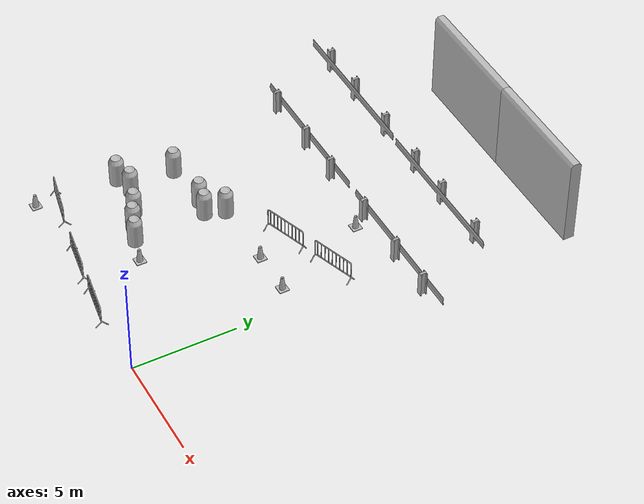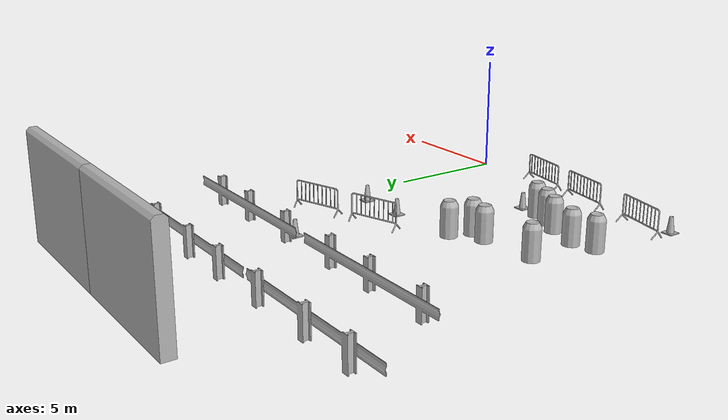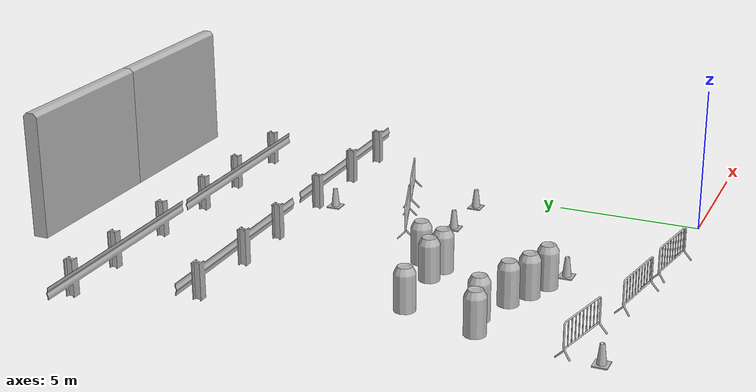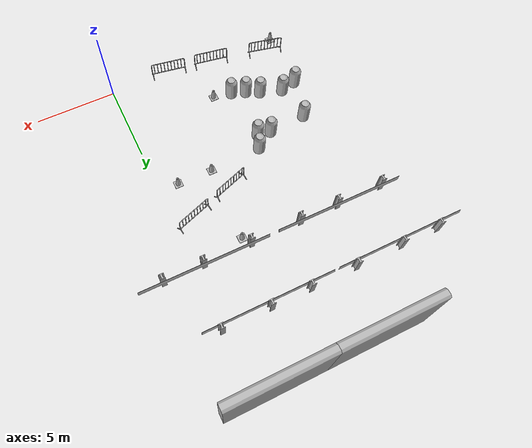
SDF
<sdf version="1.6">
 <world name="default">
  <model name="aws_robomaker_racetrack_CrashworthBucket_01_00">
   <link name="aws_CrashworthBucket_01::body">
    <inertial>
     <mass>5</mass>
     <inertia><ixx>1</ixx><ixy>0</ixy><ixz>0</ixz><iyy>1</iyy><iyz>0</iyz><izz>1</izz></inertia>
    </inertial>
    <visual name="visual">
     <geometry>
      <mesh>
       <uri>file://models/aws_robomaker_racetrack_CrashworthBucket_01/meshes/aws_CrashworthBucket_01_visual.DAE</uri>
      </mesh>
     </geometry>
     <material><shader type="pixel"><normal_map>__default__</normal_map></shader></material>
     <meta><layer>0</layer></meta>
    </visual>
    <collision name="collision_0">
     <geometry>
      <mesh>
       <uri>file://models/aws_robomaker_racetrack_CrashworthBucket_01/meshes/aws_CrashworthBucket_01_collision.DAE</uri>
       <scale>1 1 1</scale>
      </mesh>
     </geometry>
     <surface>
      <friction>
       <ode><mu>1</mu><mu2>1</mu2><fdir1>0 0 0</fdir1><slip1>0</slip1><slip2>0</slip2></ode>
       <torsional>
        <coefficient>1</coefficient>
        <patch_radius>0</patch_radius>
        <surface_radius>0</surface_radius>
        <use_patch_radius>1</use_patch_radius>
        <ode><slip>0</slip></ode>
       </torsional>
      </friction>
      <bounce><restitution_coefficient>0</restitution_coefficient><threshold>1e+06</threshold></bounce>
      <contact>
       <collide_without_contact>0</collide_without_contact>
       <collide_without_contact_bitmask>1</collide_without_contact_bitmask>
       <collide_bitmask>1</collide_bitmask>
       <ode>
        <soft_cfm>0</soft_cfm>
        <soft_erp>0.2</soft_erp>
        <kp>1e+13</kp>
        <kd>1</kd>
        <max_vel>0.01</max_vel>
        <min_depth>0</min_depth>
       </ode>
       <bullet>
        <split_impulse>1</split_impulse>
        <split_impulse_penetration_threshold>-0.01</split_impulse_penetration_threshold>
        <soft_cfm>0</soft_cfm>
        <soft_erp>0.2</soft_erp>
        <kp>1e+13</kp>
        <kd>1</kd>
       </bullet>
      </contact>
     </surface>
    </collision>
   </link>
   <static>1</static>
   <pose>-8.47522 4.09403 0.054 0 -0 0</pose>
  </model>
  <model name="aws_robomaker_racetrack_CrashworthBucket_01_01">
   <link name="aws_CrashworthBucket_01::body">
    <inertial>
     <mass>5</mass>
     <inertia><ixx>1</ixx><ixy>0</ixy><ixz>0</ixz><iyy>1</iyy><iyz>0</iyz><izz>1</izz></inertia>
    </inertial>
    <visual name="visual">
     <geometry>
      <mesh>
       <uri>file://models/aws_robomaker_racetrack_CrashworthBucket_01/meshes/aws_CrashworthBucket_01_visual.DAE</uri>
      </mesh>
     </geometry>
     <material><shader type="pixel"><normal_map>__default__</normal_map></shader></material>
     <meta><layer>0</layer></meta>
    </visual>
    <collision name="collision_0">
     <geometry>
      <mesh>
       <uri>file://models/aws_robomaker_racetrack_CrashworthBucket_01/meshes/aws_CrashworthBucket_01_collision.DAE</uri>
       <scale>1 1 1</scale>
      </mesh>
     </geometry>
     <surface>
      <friction>
       <ode><mu>1</mu><mu2>1</mu2><fdir1>0 0 0</fdir1><slip1>0</slip1><slip2>0</slip2></ode>
       <torsional>
        <coefficient>1</coefficient>
        <patch_radius>0</patch_radius>
        <surface_radius>0</surface_radius>
        <use_patch_radius>1</use_patch_radius>
        <ode><slip>0</slip></ode>
       </torsional>
      </friction>
      <bounce><restitution_coefficient>0</restitution_coefficient><threshold>1e+06</threshold></bounce>
      <contact>
       <collide_without_contact>0</collide_without_contact>
       <collide_without_contact_bitmask>1</collide_without_contact_bitmask>
       <collide_bitmask>1</collide_bitmask>
       <ode>
        <soft_cfm>0</soft_cfm>
        <soft_erp>0.2</soft_erp>
        <kp>1e+13</kp>
        <kd>1</kd>
        <max_vel>0.01</max_vel>
        <min_depth>0</min_depth>
       </ode>
       <bullet>
        <split_impulse>1</split_impulse>
        <split_impulse_penetration_threshold>-0.01</split_impulse_penetration_threshold>
        <soft_cfm>0</soft_cfm>
        <soft_erp>0.2</soft_erp>
        <kp>1e+13</kp>
        <kd>1</kd>
       </bullet>
      </contact>
     </surface>
    </collision>
   </link>
   <static>1</static>
   <pose>-7.67012 3.67698 0.054 0 -0 0</pose>
  </model>
  <model name="aws_robomaker_racetrack_CrashworthBucket_01_50">
   <link name="aws_CrashworthBucket_01::body">
    <inertial>
     <mass>5</mass>
     <inertia><ixx>1</ixx><ixy>0</ixy><ixz>0</ixz><iyy>1</iyy><iyz>0</iyz><izz>1</izz></inertia>
    </inertial>
    <visual name="visual">
     <geometry>
      <mesh>
       <uri>file://models/aws_robomaker_racetrack_CrashworthBucket_01/meshes/aws_CrashworthBucket_01_visual.DAE</uri>
      </mesh>
     </geometry>
     <material><shader type="pixel"><normal_map>__default__</normal_map></shader></material>
     <meta><layer>0</layer></meta>
    </visual>
    <collision name="collision_0">
     <geometry>
      <mesh>
       <uri>file://models/aws_robomaker_racetrack_CrashworthBucket_01/meshes/aws_CrashworthBucket_01_collision.DAE</uri>
       <scale>1 1 1</scale>
      </mesh>
     </geometry>
     <surface>
      <friction>
       <ode><mu>1</mu><mu2>1</mu2><fdir1>0 0 0</fdir1><slip1>0</slip1><slip2>0</slip2></ode>
       <torsional>
        <coefficient>1</coefficient>
        <patch_radius>0</patch_radius>
        <surface_radius>0</surface_radius>
        <use_patch_radius>1</use_patch_radius>
        <ode><slip>0</slip></ode>
       </torsional>
      </friction>
      <bounce><restitution_coefficient>0</restitution_coefficient><threshold>1e+06</threshold></bounce>
      <contact>
       <collide_without_contact>0</collide_without_contact>
       <collide_without_contact_bitmask>1</collide_without_contact_bitmask>
       <collide_bitmask>1</collide_bitmask>
       <ode>
        <soft_cfm>0</soft_cfm>
        <soft_erp>0.2</soft_erp>
        <kp>1e+13</kp>
        <kd>1</kd>
        <max_vel>0.01</max_vel>
        <min_depth>0</min_depth>
       </ode>
       <bullet>
        <split_impulse>1</split_impulse>
        <split_impulse_penetration_threshold>-0.01</split_impulse_penetration_threshold>
        <soft_cfm>0</soft_cfm>
        <soft_erp>0.2</soft_erp>
        <kp>1e+13</kp>
        <kd>1</kd>
       </bullet>
      </contact>
     </surface>
    </collision>
   </link>
   <static>1</static>
   <pose>-6.80733 3.36416 0.054 0 -0 0</pose>
  </model>
  <model name="aws_robomaker_racetrack_CrashworthBucket_01_51">
   <link name="aws_CrashworthBucket_01::body">
    <inertial>
     <mass>5</mass>
     <inertia><ixx>1</ixx><ixy>0</ixy><ixz>0</ixz><iyy>1</iyy><iyz>0</iyz><izz>1</izz></inertia>
    </inertial>
    <visual name="visual">
     <geometry>
      <mesh>
       <uri>file://models/aws_robomaker_racetrack_CrashworthBucket_01/meshes/aws_CrashworthBucket_01_visual.DAE</uri>
      </mesh>
     </geometry>
     <material><shader type="pixel"><normal_map>__default__</normal_map></shader></material>
     <meta><layer>0</layer></meta>
    </visual>
    <collision name="collision_0">
     <geometry>
      <mesh>
       <uri>file://models/aws_robomaker_racetrack_CrashworthBucket_01/meshes/aws_CrashworthBucket_01_collision.DAE</uri>
       <scale>1 1 1</scale>
      </mesh>
     </geometry>
     <surface>
      <friction>
       <ode><mu>1</mu><mu2>1</mu2><fdir1>0 0 0</fdir1><slip1>0</slip1><slip2>0</slip2></ode>
       <torsional>
        <coefficient>1</coefficient>
        <patch_radius>0</patch_radius>
        <surface_radius>0</surface_radius>
        <use_patch_radius>1</use_patch_radius>
        <ode><slip>0</slip></ode>
       </torsional>
      </friction>
      <bounce><restitution_coefficient>0</restitution_coefficient><threshold>1e+06</threshold></bounce>
      <contact>
       <collide_without_contact>0</collide_without_contact>
       <collide_without_contact_bitmask>1</collide_without_contact_bitmask>
       <collide_bitmask>1</collide_bitmask>
       <ode>
        <soft_cfm>0</soft_cfm>
        <soft_erp>0.2</soft_erp>
        <kp>1e+13</kp>
        <kd>1</kd>
        <max_vel>0.01</max_vel>
        <min_depth>0</min_depth>
       </ode>
       <bullet>
        <split_impulse>1</split_impulse>
        <split_impulse_penetration_threshold>-0.01</split_impulse_penetration_threshold>
        <soft_cfm>0</soft_cfm>
        <soft_erp>0.2</soft_erp>
        <kp>1e+13</kp>
        <kd>1</kd>
       </bullet>
      </contact>
     </surface>
    </collision>
   </link>
   <static>1</static>
   <pose>-9.83411 4.55632 0.054 0 -0 0</pose>
  </model>
  <model name="aws_robomaker_racetrack_CrashworthBucket_01_52">
   <link name="aws_CrashworthBucket_01::body">
    <inertial>
     <mass>5</mass>
     <inertia><ixx>1</ixx><ixy>0</ixy><ixz>0</ixz><iyy>1</iyy><iyz>0</iyz><izz>1</izz></inertia>
    </inertial>
    <visual name="visual">
     <geometry>
      <mesh>
       <uri>file://models/aws_robomaker_racetrack_CrashworthBucket_01/meshes/aws_CrashworthBucket_01_visual.DAE</uri>
      </mesh>
     </geometry>
     <material><shader type="pixel"><normal_map>__default__</normal_map></shader></material>
     <meta><layer>0</layer></meta>
    </visual>
    <collision name="collision_0">
     <geometry>
      <mesh>
       <uri>file://models/aws_robomaker_racetrack_CrashworthBucket_01/meshes/aws_CrashworthBucket_01_collision.DAE</uri>
       <scale>1 1 1</scale>
      </mesh>
     </geometry>
     <surface>
      <friction>
       <ode><mu>1</mu><mu2>1</mu2><fdir1>0 0 0</fdir1><slip1>0</slip1><slip2>0</slip2></ode>
       <torsional>
        <coefficient>1</coefficient>
        <patch_radius>0</patch_radius>
        <surface_radius>0</surface_radius>
        <use_patch_radius>1</use_patch_radius>
        <ode><slip>0</slip></ode>
       </torsional>
      </friction>
      <bounce><restitution_coefficient>0</restitution_coefficient><threshold>1e+06</threshold></bounce>
      <contact>
       <collide_without_contact>0</collide_without_contact>
       <collide_without_contact_bitmask>1</collide_without_contact_bitmask>
       <collide_bitmask>1</collide_bitmask>
       <ode>
        <soft_cfm>0</soft_cfm>
        <soft_erp>0.2</soft_erp>
        <kp>1e+13</kp>
        <kd>1</kd>
        <max_vel>0.01</max_vel>
        <min_depth>0</min_depth>
       </ode>
       <bullet>
        <split_impulse>1</split_impulse>
        <split_impulse_penetration_threshold>-0.01</split_impulse_penetration_threshold>
        <soft_cfm>0</soft_cfm>
        <soft_erp>0.2</soft_erp>
        <kp>1e+13</kp>
        <kd>1</kd>
       </bullet>
      </contact>
     </surface>
    </collision>
   </link>
   <static>1</static>
   <pose>-10.8194 4.31922 0.054 0 -0 0</pose>
  </model>
  <model name="aws_robomaker_racetrack_CrashworthBucket_01_54">
   <link name="aws_CrashworthBucket_01::body">
    <inertial>
     <mass>5</mass>
     <inertia><ixx>1</ixx><ixy>0</ixy><ixz>0</ixz><iyy>1</iyy><iyz>0</iyz><izz>1</izz></inertia>
    </inertial>
    <visual name="visual">
     <geometry>
      <mesh>
       <uri>file://models/aws_robomaker_racetrack_CrashworthBucket_01/meshes/aws_CrashworthBucket_01_visual.DAE</uri>
      </mesh>
     </geometry>
     <material><shader type="pixel"><normal_map>__default__</normal_map></shader></material>
     <meta><layer>0</layer></meta>
    </visual>
    <collision name="collision_0">
     <geometry>
      <mesh>
       <uri>file://models/aws_robomaker_racetrack_CrashworthBucket_01/meshes/aws_CrashworthBucket_01_collision.DAE</uri>
       <scale>1 1 1</scale>
      </mesh>
     </geometry>
     <surface>
      <friction>
       <ode><mu>1</mu><mu2>1</mu2><fdir1>0 0 0</fdir1><slip1>0</slip1><slip2>0</slip2></ode>
       <torsional>
        <coefficient>1</coefficient>
        <patch_radius>0</patch_radius>
        <surface_radius>0</surface_radius>
        <use_patch_radius>1</use_patch_radius>
        <ode><slip>0</slip></ode>
       </torsional>
      </friction>
      <bounce><restitution_coefficient>0</restitution_coefficient><threshold>1e+06</threshold></bounce>
      <contact>
       <collide_without_contact>0</collide_without_contact>
       <collide_without_contact_bitmask>1</collide_without_contact_bitmask>
       <collide_bitmask>1</collide_bitmask>
       <ode>
        <soft_cfm>0</soft_cfm>
        <soft_erp>0.2</soft_erp>
        <kp>1e+13</kp>
        <kd>1</kd>
        <max_vel>0.01</max_vel>
        <min_depth>0</min_depth>
       </ode>
       <bullet>
        <split_impulse>1</split_impulse>
        <split_impulse_penetration_threshold>-0.01</split_impulse_penetration_threshold>
        <soft_cfm>0</soft_cfm>
        <soft_erp>0.2</soft_erp>
        <kp>1e+13</kp>
        <kd>1</kd>
       </bullet>
      </contact>
     </surface>
    </collision>
   </link>
   <static>1</static>
   <pose>-10.1026 6.87186 0.054 0 -0 0</pose>
  </model>
  <model name="aws_robomaker_racetrack_CrashworthBucket_01_57">
   <link name="aws_CrashworthBucket_01::body">
    <inertial>
     <mass>5</mass>
     <inertia><ixx>1</ixx><ixy>0</ixy><ixz>0</ixz><iyy>1</iyy><iyz>0</iyz><izz>1</izz></inertia>
    </inertial>
    <visual name="visual">
     <geometry>
      <mesh>
       <uri>file://models/aws_robomaker_racetrack_CrashworthBucket_01/meshes/aws_CrashworthBucket_01_visual.DAE</uri>
      </mesh>
     </geometry>
     <material><shader type="pixel"><normal_map>__default__</normal_map></shader></material>
     <meta><layer>0</layer></meta>
    </visual>
    <collision name="collision_0">
     <geometry>
      <mesh>
       <uri>file://models/aws_robomaker_racetrack_CrashworthBucket_01/meshes/aws_CrashworthBucket_01_collision.DAE</uri>
       <scale>1 1 1</scale>
      </mesh>
     </geometry>
     <surface>
      <friction>
       <ode><mu>1</mu><mu2>1</mu2><fdir1>0 0 0</fdir1><slip1>0</slip1><slip2>0</slip2></ode>
       <torsional>
        <coefficient>1</coefficient>
        <patch_radius>0</patch_radius>
        <surface_radius>0</surface_radius>
        <use_patch_radius>1</use_patch_radius>
        <ode><slip>0</slip></ode>
       </torsional>
      </friction>
      <bounce><restitution_coefficient>0</restitution_coefficient><threshold>1e+06</threshold></bounce>
      <contact>
       <collide_without_contact>0</collide_without_contact>
       <collide_without_contact_bitmask>1</collide_without_contact_bitmask>
       <collide_bitmask>1</collide_bitmask>
       <ode>
        <soft_cfm>0</soft_cfm>
        <soft_erp>0.2</soft_erp>
        <kp>1e+13</kp>
        <kd>1</kd>
        <max_vel>0.01</max_vel>
        <min_depth>0</min_depth>
       </ode>
       <bullet>
        <split_impulse>1</split_impulse>
        <split_impulse_penetration_threshold>-0.01</split_impulse_penetration_threshold>
        <soft_cfm>0</soft_cfm>
        <soft_erp>0.2</soft_erp>
        <kp>1e+13</kp>
        <kd>1</kd>
       </bullet>
      </contact>
     </surface>
    </collision>
   </link>
   <static>1</static>
   <pose>-7.72969 7.02543 0.054 0 -0 0</pose>
  </model>
  <model name="aws_robomaker_racetrack_CrashworthBucket_01_58">
   <link name="aws_CrashworthBucket_01::body">
    <inertial>
     <mass>5</mass>
     <inertia><ixx>1</ixx><ixy>0</ixy><ixz>0</ixz><iyy>1</iyy><iyz>0</iyz><izz>1</izz></inertia>
    </inertial>
    <visual name="visual">
     <geometry>
      <mesh>
       <uri>file://models/aws_robomaker_racetrack_CrashworthBucket_01/meshes/aws_CrashworthBucket_01_visual.DAE</uri>
      </mesh>
     </geometry>
     <material><shader type="pixel"><normal_map>__default__</normal_map></shader></material>
     <meta><layer>0</layer></meta>
    </visual>
    <collision name="collision_0">
     <geometry>
      <mesh>
       <uri>file://models/aws_robomaker_racetrack_CrashworthBucket_01/meshes/aws_CrashworthBucket_01_collision.DAE</uri>
       <scale>1 1 1</scale>
      </mesh>
     </geometry>
     <surface>
      <friction>
       <ode><mu>1</mu><mu2>1</mu2><fdir1>0 0 0</fdir1><slip1>0</slip1><slip2>0</slip2></ode>
       <torsional>
        <coefficient>1</coefficient>
        <patch_radius>0</patch_radius>
        <surface_radius>0</surface_radius>
        <use_patch_radius>1</use_patch_radius>
        <ode><slip>0</slip></ode>
       </torsional>
      </friction>
      <bounce><restitution_coefficient>0</restitution_coefficient><threshold>1e+06</threshold></bounce>
      <contact>
       <collide_without_contact>0</collide_without_contact>
       <collide_without_contact_bitmask>1</collide_without_contact_bitmask>
       <collide_bitmask>1</collide_bitmask>
       <ode>
        <soft_cfm>0</soft_cfm>
        <soft_erp>0.2</soft_erp>
        <kp>1e+13</kp>
        <kd>1</kd>
        <max_vel>0.01</max_vel>
        <min_depth>0</min_depth>
       </ode>
       <bullet>
        <split_impulse>1</split_impulse>
        <split_impulse_penetration_threshold>-0.01</split_impulse_penetration_threshold>
        <soft_cfm>0</soft_cfm>
        <soft_erp>0.2</soft_erp>
        <kp>1e+13</kp>
        <kd>1</kd>
       </bullet>
      </contact>
     </surface>
    </collision>
   </link>
   <static>1</static>
   <pose>-6.91293 6.87432 0.054 0 -0 0</pose>
  </model>
  <model name="aws_robomaker_racetrack_CrashworthBucket_01_59">
   <link name="aws_CrashworthBucket_01::body">
    <inertial>
     <mass>5</mass>
     <inertia><ixx>1</ixx><ixy>0</ixy><ixz>0</ixz><iyy>1</iyy><iyz>0</iyz><izz>1</izz></inertia>
    </inertial>
    <visual name="visual">
     <geometry>
      <mesh>
       <uri>file://models/aws_robomaker_racetrack_CrashworthBucket_01/meshes/aws_CrashworthBucket_01_visual.DAE</uri>
      </mesh>
     </geometry>
     <material><shader type="pixel"><normal_map>__default__</normal_map></shader></material>
     <meta><layer>0</layer></meta>
    </visual>
    <collision name="collision_0">
     <geometry>
      <mesh>
       <uri>file://models/aws_robomaker_racetrack_CrashworthBucket_01/meshes/aws_CrashworthBucket_01_collision.DAE</uri>
       <scale>1 1 1</scale>
      </mesh>
     </geometry>
     <surface>
      <friction>
       <ode><mu>1</mu><mu2>1</mu2><fdir1>0 0 0</fdir1><slip1>0</slip1><slip2>0</slip2></ode>
       <torsional>
        <coefficient>1</coefficient>
        <patch_radius>0</patch_radius>
        <surface_radius>0</surface_radius>
        <use_patch_radius>1</use_patch_radius>
        <ode><slip>0</slip></ode>
       </torsional>
      </friction>
      <bounce><restitution_coefficient>0</restitution_coefficient><threshold>1e+06</threshold></bounce>
      <contact>
       <collide_without_contact>0</collide_without_contact>
       <collide_without_contact_bitmask>1</collide_without_contact_bitmask>
       <collide_bitmask>1</collide_bitmask>
       <ode>
        <soft_cfm>0</soft_cfm>
        <soft_erp>0.2</soft_erp>
        <kp>1e+13</kp>
        <kd>1</kd>
        <max_vel>0.01</max_vel>
        <min_depth>0</min_depth>
       </ode>
       <bullet>
        <split_impulse>1</split_impulse>
        <split_impulse_penetration_threshold>-0.01</split_impulse_penetration_threshold>
        <soft_cfm>0</soft_cfm>
        <soft_erp>0.2</soft_erp>
        <kp>1e+13</kp>
        <kd>1</kd>
       </bullet>
      </contact>
     </surface>
    </collision>
   </link>
   <static>1</static>
   <pose>-6.56208 7.77782 0.054 0 -0 0</pose>
  </model>
  <model name="aws_robomaker_racetrack_Fence_01_01">
   <link name="aws_Fence_01::body">
    <inertial>
     <mass>5</mass>
     <inertia><ixx>1</ixx><ixy>0</ixy><ixz>0</ixz><iyy>1</iyy><iyz>0</iyz><izz>1</izz></inertia>
    </inertial>
    <visual name="visual">
     <geometry>
      <mesh><uri>file://models/aws_robomaker_racetrack_Fence_01/meshes/aws_Fence_01_visual.DAE</uri></mesh>
     </geometry>
     <material><shader type="pixel"><normal_map>__default__</normal_map></shader></material>
     <meta><layer>0</layer></meta>
    </visual>
    <collision name="collision_0">
     <geometry>
      <mesh>
       <uri>file://models/aws_robomaker_racetrack_Fence_01/meshes/aws_Fence_01_collision.DAE</uri>
       <scale>1 1 1</scale>
      </mesh>
     </geometry>
     <surface>
      <friction>
       <ode><mu>1</mu><mu2>1</mu2><fdir1>0 0 0</fdir1><slip1>0</slip1><slip2>0</slip2></ode>
       <torsional>
        <coefficient>1</coefficient>
        <patch_radius>0</patch_radius>
        <surface_radius>0</surface_radius>
        <use_patch_radius>1</use_patch_radius>
        <ode><slip>0</slip></ode>
       </torsional>
      </friction>
      <bounce><restitution_coefficient>0</restitution_coefficient><threshold>1e+06</threshold></bounce>
      <contact>
       <collide_without_contact>0</collide_without_contact>
       <collide_without_contact_bitmask>1</collide_without_contact_bitmask>
       <collide_bitmask>1</collide_bitmask>
       <ode>
        <soft_cfm>0</soft_cfm>
        <soft_erp>0.2</soft_erp>
        <kp>1e+13</kp>
        <kd>1</kd>
        <max_vel>0.01</max_vel>
        <min_depth>0</min_depth>
       </ode>
       <bullet>
        <split_impulse>1</split_impulse>
        <split_impulse_penetration_threshold>-0.01</split_impulse_penetration_threshold>
        <soft_cfm>0</soft_cfm>
        <soft_erp>0.2</soft_erp>
        <kp>1e+13</kp>
        <kd>1</kd>
       </bullet>
      </contact>
     </surface>
    </collision>
   </link>
   <static>1</static>
   <pose>-0.500271 13.1587 0 0 0 -1.57272</pose>
  </model>
  <model name="aws_robomaker_racetrack_Fence_01_02">
   <link name="aws_Fence_01::body">
    <inertial>
     <mass>5</mass>
     <inertia><ixx>1</ixx><ixy>0</ixy><ixz>0</ixz><iyy>1</iyy><iyz>0</iyz><izz>1</izz></inertia>
    </inertial>
    <visual name="visual">
     <geometry>
      <mesh><uri>file://models/aws_robomaker_racetrack_Fence_01/meshes/aws_Fence_01_visual.DAE</uri></mesh>
     </geometry>
     <material><shader type="pixel"><normal_map>__default__</normal_map></shader></material>
     <meta><layer>0</layer></meta>
    </visual>
    <collision name="collision_0">
     <geometry>
      <mesh>
       <uri>file://models/aws_robomaker_racetrack_Fence_01/meshes/aws_Fence_01_collision.DAE</uri>
       <scale>1 1 1</scale>
      </mesh>
     </geometry>
     <surface>
      <friction>
       <ode><mu>1</mu><mu2>1</mu2><fdir1>0 0 0</fdir1><slip1>0</slip1><slip2>0</slip2></ode>
       <torsional>
        <coefficient>1</coefficient>
        <patch_radius>0</patch_radius>
        <surface_radius>0</surface_radius>
        <use_patch_radius>1</use_patch_radius>
        <ode><slip>0</slip></ode>
       </torsional>
      </friction>
      <bounce><restitution_coefficient>0</restitution_coefficient><threshold>1e+06</threshold></bounce>
      <contact>
       <collide_without_contact>0</collide_without_contact>
       <collide_without_contact_bitmask>1</collide_without_contact_bitmask>
       <collide_bitmask>1</collide_bitmask>
       <ode>
        <soft_cfm>0</soft_cfm>
        <soft_erp>0.2</soft_erp>
        <kp>1e+13</kp>
        <kd>1</kd>
        <max_vel>0.01</max_vel>
        <min_depth>0</min_depth>
       </ode>
       <bullet>
        <split_impulse>1</split_impulse>
        <split_impulse_penetration_threshold>-0.01</split_impulse_penetration_threshold>
        <soft_cfm>0</soft_cfm>
        <soft_erp>0.2</soft_erp>
        <kp>1e+13</kp>
        <kd>1</kd>
       </bullet>
      </contact>
     </surface>
    </collision>
   </link>
   <static>1</static>
   <pose>-8.89723 13.1587 0 0 0 -1.57272</pose>
  </model>
  <model name="aws_robomaker_racetrack_Fence_01_13">
   <link name="aws_Fence_01::body">
    <inertial>
     <mass>5</mass>
     <inertia><ixx>1</ixx><ixy>0</ixy><ixz>0</ixz><iyy>1</iyy><iyz>0</iyz><izz>1</izz></inertia>
    </inertial>
    <visual name="visual">
     <geometry>
      <mesh><uri>file://models/aws_robomaker_racetrack_Fence_01/meshes/aws_Fence_01_visual.DAE</uri></mesh>
     </geometry>
     <material><shader type="pixel"><normal_map>__default__</normal_map></shader></material>
     <meta><layer>0</layer></meta>
    </visual>
    <collision name="collision_0">
     <geometry>
      <mesh>
       <uri>file://models/aws_robomaker_racetrack_Fence_01/meshes/aws_Fence_01_collision.DAE</uri>
       <scale>1 1 1</scale>
      </mesh>
     </geometry>
     <surface>
      <friction>
       <ode><mu>1</mu><mu2>1</mu2><fdir1>0 0 0</fdir1><slip1>0</slip1><slip2>0</slip2></ode>
       <torsional>
        <coefficient>1</coefficient>
        <patch_radius>0</patch_radius>
        <surface_radius>0</surface_radius>
        <use_patch_radius>1</use_patch_radius>
        <ode><slip>0</slip></ode>
       </torsional>
      </friction>
      <bounce><restitution_coefficient>0</restitution_coefficient><threshold>1e+06</threshold></bounce>
      <contact>
       <collide_without_contact>0</collide_without_contact>
       <collide_without_contact_bitmask>1</collide_without_contact_bitmask>
       <collide_bitmask>1</collide_bitmask>
       <ode>
        <soft_cfm>0</soft_cfm>
        <soft_erp>0.2</soft_erp>
        <kp>1e+13</kp>
        <kd>1</kd>
        <max_vel>0.01</max_vel>
        <min_depth>0</min_depth>
       </ode>
       <bullet>
        <split_impulse>1</split_impulse>
        <split_impulse_penetration_threshold>-0.01</split_impulse_penetration_threshold>
        <soft_cfm>0</soft_cfm>
        <soft_erp>0.2</soft_erp>
        <kp>1e+13</kp>
        <kd>1</kd>
       </bullet>
      </contact>
     </surface>
    </collision>
   </link>
   <static>1</static>
   <pose>-10.7761 16.8189 0.054 0 -0 1.57158</pose>
  </model>
  <model name="aws_robomaker_racetrack_Fence_01_14">
   <link name="aws_Fence_01::body">
    <inertial>
     <mass>5</mass>
     <inertia><ixx>1</ixx><ixy>0</ixy><ixz>0</ixz><iyy>1</iyy><iyz>0</iyz><izz>1</izz></inertia>
    </inertial>
    <visual name="visual">
     <geometry>
      <mesh><uri>file://models/aws_robomaker_racetrack_Fence_01/meshes/aws_Fence_01_visual.DAE</uri></mesh>
     </geometry>
     <material><shader type="pixel"><normal_map>__default__</normal_map></shader></material>
     <meta><layer>0</layer></meta>
    </visual>
    <collision name="collision_0">
     <geometry>
      <mesh>
       <uri>file://models/aws_robomaker_racetrack_Fence_01/meshes/aws_Fence_01_collision.DAE</uri>
       <scale>1 1 1</scale>
      </mesh>
     </geometry>
     <surface>
      <friction>
       <ode><mu>1</mu><mu2>1</mu2><fdir1>0 0 0</fdir1><slip1>0</slip1><slip2>0</slip2></ode>
       <torsional>
        <coefficient>1</coefficient>
        <patch_radius>0</patch_radius>
        <surface_radius>0</surface_radius>
        <use_patch_radius>1</use_patch_radius>
        <ode><slip>0</slip></ode>
       </torsional>
      </friction>
      <bounce><restitution_coefficient>0</restitution_coefficient><threshold>1e+06</threshold></bounce>
      <contact>
       <collide_without_contact>0</collide_without_contact>
       <collide_without_contact_bitmask>1</collide_without_contact_bitmask>
       <collide_bitmask>1</collide_bitmask>
       <ode>
        <soft_cfm>0</soft_cfm>
        <soft_erp>0.2</soft_erp>
        <kp>1e+13</kp>
        <kd>1</kd>
        <max_vel>0.01</max_vel>
        <min_depth>0</min_depth>
       </ode>
       <bullet>
        <split_impulse>1</split_impulse>
        <split_impulse_penetration_threshold>-0.01</split_impulse_penetration_threshold>
        <soft_cfm>0</soft_cfm>
        <soft_erp>0.2</soft_erp>
        <kp>1e+13</kp>
        <kd>1</kd>
       </bullet>
      </contact>
     </surface>
    </collision>
   </link>
   <static>1</static>
   <pose>-2.67941 16.8189 0 0 -0 1.57158</pose>
  </model>
  <model name="aws_robomaker_racetrack_Fence_02_02">
   <link name="aws_Fence_02::body">
    <inertial>
     <mass>5</mass>
     <inertia><ixx>9.6</ixx><ixy>0</ixy><ixz>0</ixz><iyy>8.2</iyy><iyz>0</iyz><izz>2.1</izz></inertia>
    </inertial>
    <visual name="visual">
     <geometry>
      <mesh><uri>file://models/aws_robomaker_racetrack_Fence_02/meshes/aws_Fence_02_visual.DAE</uri></mesh>
     </geometry>
     <material><shader type="pixel"><normal_map>__default__</normal_map></shader></material>
     <meta><layer>0</layer></meta>
    </visual>
    <collision name="collision_0">
     <geometry>
      <mesh>
       <uri>file://models/aws_robomaker_racetrack_Fence_02/meshes/aws_Fence_02_collision.DAE</uri>
       <scale>1 1 1</scale>
      </mesh>
     </geometry>
     <surface>
      <friction>
       <ode><mu>1</mu><mu2>1</mu2><fdir1>0 0 0</fdir1><slip1>0</slip1><slip2>0</slip2></ode>
       <torsional>
        <coefficient>1</coefficient>
        <patch_radius>0</patch_radius>
        <surface_radius>0</surface_radius>
        <use_patch_radius>1</use_patch_radius>
        <ode><slip>0</slip></ode>
       </torsional>
      </friction>
      <bounce><restitution_coefficient>0</restitution_coefficient><threshold>1e+06</threshold></bounce>
      <contact>
       <collide_without_contact>0</collide_without_contact>
       <collide_without_contact_bitmask>1</collide_without_contact_bitmask>
       <collide_bitmask>1</collide_bitmask>
      </contact>
     </surface>
    </collision>
   </link>
   <static>1</static>
   <pose>-3.88076 0.08215 0 0 0 -1.73608</pose>
  </model>
  <model name="aws_robomaker_racetrack_Fence_02_03">
   <link name="aws_Fence_02::body">
    <inertial>
     <mass>5</mass>
     <inertia><ixx>9.6</ixx><ixy>0</ixy><ixz>0</ixz><iyy>8.2</iyy><iyz>0</iyz><izz>2.1</izz></inertia>
    </inertial>
    <visual name="visual">
     <geometry>
      <mesh><uri>file://models/aws_robomaker_racetrack_Fence_02/meshes/aws_Fence_02_visual.DAE</uri></mesh>
     </geometry>
     <material><shader type="pixel"><normal_map>__default__</normal_map></shader></material>
     <meta><layer>0</layer></meta>
    </visual>
    <collision name="collision_0">
     <geometry>
      <mesh>
       <uri>file://models/aws_robomaker_racetrack_Fence_02/meshes/aws_Fence_02_collision.DAE</uri>
       <scale>1 1 1</scale>
      </mesh>
     </geometry>
     <surface>
      <friction>
       <ode><mu>1</mu><mu2>1</mu2><fdir1>0 0 0</fdir1><slip1>0</slip1><slip2>0</slip2></ode>
       <torsional>
        <coefficient>1</coefficient>
        <patch_radius>0</patch_radius>
        <surface_radius>0</surface_radius>
        <use_patch_radius>1</use_patch_radius>
        <ode><slip>0</slip></ode>
       </torsional>
      </friction>
      <bounce><restitution_coefficient>0</restitution_coefficient><threshold>1e+06</threshold></bounce>
      <contact>
       <collide_without_contact>0</collide_without_contact>
       <collide_without_contact_bitmask>1</collide_without_contact_bitmask>
       <collide_bitmask>1</collide_bitmask>
      </contact>
     </surface>
    </collision>
   </link>
   <static>1</static>
   <pose>-6.69129 0.495608 0 0 0 -1.73608</pose>
  </model>
  <model name="aws_robomaker_racetrack_Fence_02_04">
   <link name="aws_Fence_02::body">
    <inertial>
     <mass>5</mass>
     <inertia><ixx>9.6</ixx><ixy>0</ixy><ixz>0</ixz><iyy>8.2</iyy><iyz>0</iyz><izz>2.1</izz></inertia>
    </inertial>
    <visual name="visual">
     <geometry>
      <mesh><uri>file://models/aws_robomaker_racetrack_Fence_02/meshes/aws_Fence_02_visual.DAE</uri></mesh>
     </geometry>
     <material><shader type="pixel"><normal_map>__default__</normal_map></shader></material>
     <meta><layer>0</layer></meta>
    </visual>
    <collision name="collision_0">
     <geometry>
      <mesh>
       <uri>file://models/aws_robomaker_racetrack_Fence_02/meshes/aws_Fence_02_collision.DAE</uri>
       <scale>1 1 1</scale>
      </mesh>
     </geometry>
     <surface>
      <friction>
       <ode><mu>1</mu><mu2>1</mu2><fdir1>0 0 0</fdir1><slip1>0</slip1><slip2>0</slip2></ode>
       <torsional>
        <coefficient>1</coefficient>
        <patch_radius>0</patch_radius>
        <surface_radius>0</surface_radius>
        <use_patch_radius>1</use_patch_radius>
        <ode><slip>0</slip></ode>
       </torsional>
      </friction>
      <bounce><restitution_coefficient>0</restitution_coefficient><threshold>1e+06</threshold></bounce>
      <contact>
       <collide_without_contact>0</collide_without_contact>
       <collide_without_contact_bitmask>1</collide_without_contact_bitmask>
       <collide_bitmask>1</collide_bitmask>
      </contact>
     </surface>
    </collision>
   </link>
   <static>1</static>
   <pose>-10.2836 1.22315 0.054 0 0 -1.78988</pose>
  </model>
  <model name="aws_robomaker_racetrack_Fence_02_08">
   <link name="aws_Fence_02::body">
    <inertial>
     <mass>5</mass>
     <inertia><ixx>9.6</ixx><ixy>0</ixy><ixz>0</ixz><iyy>8.2</iyy><iyz>0</iyz><izz>2.1</izz></inertia>
    </inertial>
    <visual name="visual">
     <geometry>
      <mesh><uri>file://models/aws_robomaker_racetrack_Fence_02/meshes/aws_Fence_02_visual.DAE</uri></mesh>
     </geometry>
     <material><shader type="pixel"><normal_map>__default__</normal_map></shader></material>
     <meta><layer>0</layer></meta>
    </visual>
    <collision name="collision_0">
     <geometry>
      <mesh>
       <uri>file://models/aws_robomaker_racetrack_Fence_02/meshes/aws_Fence_02_collision.DAE</uri>
       <scale>1 1 1</scale>
      </mesh>
     </geometry>
     <surface>
      <friction>
       <ode><mu>1</mu><mu2>1</mu2><fdir1>0 0 0</fdir1><slip1>0</slip1><slip2>0</slip2></ode>
       <torsional>
        <coefficient>1</coefficient>
        <patch_radius>0</patch_radius>
        <surface_radius>0</surface_radius>
        <use_patch_radius>1</use_patch_radius>
        <ode><slip>0</slip></ode>
       </torsional>
      </friction>
      <bounce><restitution_coefficient>0</restitution_coefficient><threshold>1e+06</threshold></bounce>
      <contact>
       <collide_without_contact>0</collide_without_contact>
       <collide_without_contact_bitmask>1</collide_without_contact_bitmask>
       <collide_bitmask>1</collide_bitmask>
      </contact>
     </surface>
    </collision>
   </link>
   <static>1</static>
   <pose>-1.13 10.3272 0 0 -0 1.90339</pose>
  </model>
  <model name="aws_robomaker_racetrack_Fence_02_09">
   <link name="aws_Fence_02::body">
    <inertial>
     <mass>5</mass>
     <inertia><ixx>9.6</ixx><ixy>0</ixy><ixz>0</ixz><iyy>8.2</iyy><iyz>0</iyz><izz>2.1</izz></inertia>
    </inertial>
    <visual name="visual">
     <geometry>
      <mesh><uri>file://models/aws_robomaker_racetrack_Fence_02/meshes/aws_Fence_02_visual.DAE</uri></mesh>
     </geometry>
     <material><shader type="pixel"><normal_map>__default__</normal_map></shader></material>
     <meta><layer>0</layer></meta>
    </visual>
    <collision name="collision_0">
     <geometry>
      <mesh>
       <uri>file://models/aws_robomaker_racetrack_Fence_02/meshes/aws_Fence_02_collision.DAE</uri>
       <scale>1 1 1</scale>
      </mesh>
     </geometry>
     <surface>
      <friction>
       <ode><mu>1</mu><mu2>1</mu2><fdir1>0 0 0</fdir1><slip1>0</slip1><slip2>0</slip2></ode>
       <torsional>
        <coefficient>1</coefficient>
        <patch_radius>0</patch_radius>
        <surface_radius>0</surface_radius>
        <use_patch_radius>1</use_patch_radius>
        <ode><slip>0</slip></ode>
       </torsional>
      </friction>
      <bounce><restitution_coefficient>0</restitution_coefficient><threshold>1e+06</threshold></bounce>
      <contact>
       <collide_without_contact>0</collide_without_contact>
       <collide_without_contact_bitmask>1</collide_without_contact_bitmask>
       <collide_bitmask>1</collide_bitmask>
      </contact>
     </surface>
    </collision>
   </link>
   <static>1</static>
   <pose>-3.85384 9.39461 0 0 -0 1.90339</pose>
  </model>
  <model name="aws_robomaker_racetrack_TrafficCone_01_02">
   <link name="aws_TrafficCone_01::body">
    <inertial>
     <mass>0.5</mass>
     <inertia><ixx>1</ixx><ixy>0</ixy><ixz>0</ixz><iyy>1</iyy><iyz>0</iyz><izz>1</izz></inertia>
    </inertial>
    <visual name="visual">
     <geometry>
      <mesh>
       <uri>file://models/aws_robomaker_racetrack_TrafficCone_01/meshes/aws_TrafficCone_01_visual.DAE</uri>
      </mesh>
     </geometry>
     <material><shader type="pixel"><normal_map>__default__</normal_map></shader></material>
     <meta><layer>0</layer></meta>
    </visual>
    <collision name="collision_0">
     <geometry>
      <mesh>
       <uri>file://models/aws_robomaker_racetrack_TrafficCone_01/meshes/aws_TrafficCone_01_coliision.DAE</uri>
       <scale>1 1 1</scale>
      </mesh>
     </geometry>
     <surface>
      <friction>
       <ode><mu>1</mu><mu2>1</mu2><fdir1>0 0 0</fdir1><slip1>0</slip1><slip2>0</slip2></ode>
       <torsional>
        <coefficient>1</coefficient>
        <patch_radius>0</patch_radius>
        <surface_radius>0</surface_radius>
        <use_patch_radius>1</use_patch_radius>
        <ode><slip>0</slip></ode>
       </torsional>
      </friction>
      <bounce><restitution_coefficient>0</restitution_coefficient><threshold>1e+06</threshold></bounce>
      <contact>
       <collide_without_contact>0</collide_without_contact>
       <collide_without_contact_bitmask>1</collide_without_contact_bitmask>
       <collide_bitmask>1</collide_bitmask>
       <ode>
        <soft_cfm>0</soft_cfm>
        <soft_erp>0.2</soft_erp>
        <kp>1e+13</kp>
        <kd>1</kd>
        <max_vel>0.01</max_vel>
        <min_depth>0</min_depth>
       </ode>
       <bullet>
        <split_impulse>1</split_impulse>
        <split_impulse_penetration_threshold>-0.01</split_impulse_penetration_threshold>
        <soft_cfm>0</soft_cfm>
        <soft_erp>0.2</soft_erp>
        <kp>1e+13</kp>
        <kd>1</kd>
       </bullet>
      </contact>
     </surface>
    </collision>
   </link>
   <static>1</static>
   <pose>-11.1147 0.36652 0 0 -0 0</pose>
  </model>
  <model name="aws_robomaker_racetrack_TrafficCone_01_04">
   <link name="aws_TrafficCone_01::body">
    <inertial>
     <mass>0.5</mass>
     <inertia><ixx>1</ixx><ixy>0</ixy><ixz>0</ixz><iyy>1</iyy><iyz>0</iyz><izz>1</izz></inertia>
    </inertial>
    <visual name="visual">
     <geometry>
      <mesh>
       <uri>file://models/aws_robomaker_racetrack_TrafficCone_01/meshes/aws_TrafficCone_01_visual.DAE</uri>
      </mesh>
     </geometry>
     <material><shader type="pixel"><normal_map>__default__</normal_map></shader></material>
     <meta><layer>0</layer></meta>
    </visual>
    <collision name="collision_0">
     <geometry>
      <mesh>
       <uri>file://models/aws_robomaker_racetrack_TrafficCone_01/meshes/aws_TrafficCone_01_coliision.DAE</uri>
       <scale>1 1 1</scale>
      </mesh>
     </geometry>
     <surface>
      <friction>
       <ode><mu>1</mu><mu2>1</mu2><fdir1>0 0 0</fdir1><slip1>0</slip1><slip2>0</slip2></ode>
       <torsional>
        <coefficient>1</coefficient>
        <patch_radius>0</patch_radius>
        <surface_radius>0</surface_radius>
        <use_patch_radius>1</use_patch_radius>
        <ode><slip>0</slip></ode>
       </torsional>
      </friction>
      <bounce><restitution_coefficient>0</restitution_coefficient><threshold>1e+06</threshold></bounce>
      <contact>
       <collide_without_contact>0</collide_without_contact>
       <collide_without_contact_bitmask>1</collide_without_contact_bitmask>
       <collide_bitmask>1</collide_bitmask>
       <ode>
        <soft_cfm>0</soft_cfm>
        <soft_erp>0.2</soft_erp>
        <kp>1e+13</kp>
        <kd>1</kd>
        <max_vel>0.01</max_vel>
        <min_depth>0</min_depth>
       </ode>
       <bullet>
        <split_impulse>1</split_impulse>
        <split_impulse_penetration_threshold>-0.01</split_impulse_penetration_threshold>
        <soft_cfm>0</soft_cfm>
        <soft_erp>0.2</soft_erp>
        <kp>1e+13</kp>
        <kd>1</kd>
       </bullet>
      </contact>
     </surface>
    </collision>
   </link>
   <static>1</static>
   <pose>-5.69629 3.05056 0 0 -0 0</pose>
  </model>
  <model name="aws_robomaker_racetrack_TrafficCone_01_09">
   <link name="aws_TrafficCone_01::body">
    <inertial>
     <mass>0.5</mass>
     <inertia><ixx>1</ixx><ixy>0</ixy><ixz>0</ixz><iyy>1</iyy><iyz>0</iyz><izz>1</izz></inertia>
    </inertial>
    <visual name="visual">
     <geometry>
      <mesh>
       <uri>file://models/aws_robomaker_racetrack_TrafficCone_01/meshes/aws_TrafficCone_01_visual.DAE</uri>
      </mesh>
     </geometry>
     <material><shader type="pixel"><normal_map>__default__</normal_map></shader></material>
     <meta><layer>0</layer></meta>
    </visual>
    <collision name="collision_0">
     <geometry>
      <mesh>
       <uri>file://models/aws_robomaker_racetrack_TrafficCone_01/meshes/aws_TrafficCone_01_coliision.DAE</uri>
       <scale>1 1 1</scale>
      </mesh>
     </geometry>
     <surface>
      <friction>
       <ode><mu>1</mu><mu2>1</mu2><fdir1>0 0 0</fdir1><slip1>0</slip1><slip2>0</slip2></ode>
       <torsional>
        <coefficient>1</coefficient>
        <patch_radius>0</patch_radius>
        <surface_radius>0</surface_radius>
        <use_patch_radius>1</use_patch_radius>
        <ode><slip>0</slip></ode>
       </torsional>
      </friction>
      <bounce><restitution_coefficient>0</restitution_coefficient><threshold>1e+06</threshold></bounce>
      <contact>
       <collide_without_contact>0</collide_without_contact>
       <collide_without_contact_bitmask>1</collide_without_contact_bitmask>
       <collide_bitmask>1</collide_bitmask>
       <ode>
        <soft_cfm>0</soft_cfm>
        <soft_erp>0.2</soft_erp>
        <kp>1e+13</kp>
        <kd>1</kd>
        <max_vel>0.01</max_vel>
        <min_depth>0</min_depth>
       </ode>
       <bullet>
        <split_impulse>1</split_impulse>
        <split_impulse_penetration_threshold>-0.01</split_impulse_penetration_threshold>
        <soft_cfm>0</soft_cfm>
        <soft_erp>0.2</soft_erp>
        <kp>1e+13</kp>
        <kd>1</kd>
       </bullet>
      </contact>
     </surface>
    </collision>
   </link>
   <static>1</static>
   <pose>-3.07094 12.5681 0 0 -0 0</pose>
  </model>
  <model name="aws_robomaker_racetrack_TrafficCone_01_11">
   <link name="aws_TrafficCone_01::body">
    <inertial>
     <mass>0.5</mass>
     <inertia><ixx>1</ixx><ixy>0</ixy><ixz>0</ixz><iyy>1</iyy><iyz>0</iyz><izz>1</izz></inertia>
    </inertial>
    <visual name="visual">
     <geometry>
      <mesh>
       <uri>file://models/aws_robomaker_racetrack_TrafficCone_01/meshes/aws_TrafficCone_01_visual.DAE</uri>
      </mesh>
     </geometry>
     <material><shader type="pixel"><normal_map>__default__</normal_map></shader></material>
     <meta><layer>0</layer></meta>
    </visual>
    <collision name="collision_0">
     <geometry>
      <mesh>
       <uri>file://models/aws_robomaker_racetrack_TrafficCone_01/meshes/aws_TrafficCone_01_coliision.DAE</uri>
       <scale>1 1 1</scale>
      </mesh>
     </geometry>
     <surface>
      <friction>
       <ode><mu>1</mu><mu2>1</mu2><fdir1>0 0 0</fdir1><slip1>0</slip1><slip2>0</slip2></ode>
       <torsional>
        <coefficient>1</coefficient>
        <patch_radius>0</patch_radius>
        <surface_radius>0</surface_radius>
        <use_patch_radius>1</use_patch_radius>
        <ode><slip>0</slip></ode>
       </torsional>
      </friction>
      <bounce><restitution_coefficient>0</restitution_coefficient><threshold>1e+06</threshold></bounce>
      <contact>
       <collide_without_contact>0</collide_without_contact>
       <collide_without_contact_bitmask>1</collide_without_contact_bitmask>
       <collide_bitmask>1</collide_bitmask>
       <ode>
        <soft_cfm>0</soft_cfm>
        <soft_erp>0.2</soft_erp>
        <kp>1e+13</kp>
        <kd>1</kd>
        <max_vel>0.01</max_vel>
        <min_depth>0</min_depth>
       </ode>
       <bullet>
        <split_impulse>1</split_impulse>
        <split_impulse_penetration_threshold>-0.01</split_impulse_penetration_threshold>
        <soft_cfm>0</soft_cfm>
        <soft_erp>0.2</soft_erp>
        <kp>1e+13</kp>
        <kd>1</kd>
       </bullet>
      </contact>
     </surface>
    </collision>
   </link>
   <static>1</static>
   <pose>-1.18613 7.84487 0 0 -0 0</pose>
  </model>
  <model name="aws_robomaker_racetrack_TrafficCone_01_12">
   <link name="aws_TrafficCone_01::body">
    <inertial>
     <mass>0.5</mass>
     <inertia><ixx>1</ixx><ixy>0</ixy><ixz>0</ixz><iyy>1</iyy><iyz>0</iyz><izz>1</izz></inertia>
    </inertial>
    <visual name="visual">
     <geometry>
      <mesh>
       <uri>file://models/aws_robomaker_racetrack_TrafficCone_01/meshes/aws_TrafficCone_01_visual.DAE</uri>
      </mesh>
     </geometry>
     <material><shader type="pixel"><normal_map>__default__</normal_map></shader></material>
     <meta><layer>0</layer></meta>
    </visual>
    <collision name="collision_0">
     <geometry>
      <mesh>
       <uri>file://models/aws_robomaker_racetrack_TrafficCone_01/meshes/aws_TrafficCone_01_coliision.DAE</uri>
       <scale>1 1 1</scale>
      </mesh>
     </geometry>
     <surface>
      <friction>
       <ode><mu>1</mu><mu2>1</mu2><fdir1>0 0 0</fdir1><slip1>0</slip1><slip2>0</slip2></ode>
       <torsional>
        <coefficient>1</coefficient>
        <patch_radius>0</patch_radius>
        <surface_radius>0</surface_radius>
        <use_patch_radius>1</use_patch_radius>
        <ode><slip>0</slip></ode>
       </torsional>
      </friction>
      <bounce><restitution_coefficient>0</restitution_coefficient><threshold>1e+06</threshold></bounce>
      <contact>
       <collide_without_contact>0</collide_without_contact>
       <collide_without_contact_bitmask>1</collide_without_contact_bitmask>
       <collide_bitmask>1</collide_bitmask>
       <ode>
        <soft_cfm>0</soft_cfm>
        <soft_erp>0.2</soft_erp>
        <kp>1e+13</kp>
        <kd>1</kd>
        <max_vel>0.01</max_vel>
        <min_depth>0</min_depth>
       </ode>
       <bullet>
        <split_impulse>1</split_impulse>
        <split_impulse_penetration_threshold>-0.01</split_impulse_penetration_threshold>
        <soft_cfm>0</soft_cfm>
        <soft_erp>0.2</soft_erp>
        <kp>1e+13</kp>
        <kd>1</kd>
       </bullet>
      </contact>
     </surface>
    </collision>
   </link>
   <static>1</static>
   <pose>-3.3402 7.8678 0 0 -0 0</pose>
  </model>
  <model name="aws_robomaker_racetrack_Wall_01_02">
   <link name="aws_Wall_01::body">
    <inertial>
     <mass>500</mass>
     <inertia><ixx>1</ixx><ixy>0</ixy><ixz>0</ixz><iyy>1</iyy><iyz>0</iyz><izz>1</izz></inertia>
    </inertial>
    <visual name="visual">
     <geometry>
      <mesh>
       <uri>file://models/aws_robomaker_racetrack_Wall_01/meshes/aws_Wall_01_visual.DAE</uri>
       <scale>2.59853 2.59853 2.59853</scale>
      </mesh>
     </geometry>
     <material><shader type="pixel"><normal_map>__default__</normal_map></shader></material>
     <meta><layer>1</layer></meta>
    </visual>
    <collision name="collision_0">
     <geometry>
      <mesh>
       <uri>file://models/aws_robomaker_racetrack_Wall_01/meshes/aws_Wall_01_collision.DAE</uri>
       <scale>2.59853 2.59853 2.59853</scale>
      </mesh>
     </geometry>
     <surface>
      <friction>
       <ode><mu>1</mu><mu2>1</mu2><fdir1>0 0 0</fdir1><slip1>0</slip1><slip2>0</slip2></ode>
       <torsional>
        <coefficient>1</coefficient>
        <patch_radius>0</patch_radius>
        <surface_radius>0</surface_radius>
        <use_patch_radius>1</use_patch_radius>
        <ode><slip>0</slip></ode>
       </torsional>
      </friction>
      <bounce><restitution_coefficient>0</restitution_coefficient><threshold>1e+06</threshold></bounce>
      <contact>
       <collide_without_contact>0</collide_without_contact>
       <collide_without_contact_bitmask>1</collide_without_contact_bitmask>
       <collide_bitmask>1</collide_bitmask>
       <ode>
        <soft_cfm>0</soft_cfm>
        <soft_erp>0.2</soft_erp>
        <kp>1e+13</kp>
        <kd>1</kd>
        <max_vel>0.01</max_vel>
        <min_depth>0</min_depth>
       </ode>
       <bullet>
        <split_impulse>1</split_impulse>
        <split_impulse_penetration_threshold>-0.01</split_impulse_penetration_threshold>
        <soft_cfm>0</soft_cfm>
        <soft_erp>0.2</soft_erp>
        <kp>1e+13</kp>
        <kd>1</kd>
       </bullet>
      </contact>
     </surface>
    </collision>
   </link>
   <static>1</static>
   <pose>-0.883158 20.684 0 0 -0 0</pose>
  </model>
  <model name="aws_robomaker_racetrack_Wall_01_03">
   <link name="aws_Wall_01::body">
    <inertial>
     <mass>500</mass>
     <inertia><ixx>1</ixx><ixy>0</ixy><ixz>0</ixz><iyy>1</iyy><iyz>0</iyz><izz>1</izz></inertia>
    </inertial>
    <visual name="visual">
     <geometry>
      <mesh>
       <uri>file://models/aws_robomaker_racetrack_Wall_01/meshes/aws_Wall_01_visual.DAE</uri>
       <scale>2.59853 2.59853 2.59853</scale>
      </mesh>
     </geometry>
     <material><shader type="pixel"><normal_map>__default__</normal_map></shader></material>
     <meta><layer>1</layer></meta>
    </visual>
    <collision name="collision_0">
     <geometry>
      <mesh>
       <uri>file://models/aws_robomaker_racetrack_Wall_01/meshes/aws_Wall_01_collision.DAE</uri>
       <scale>2.59853 2.59853 2.59853</scale>
      </mesh>
     </geometry>
     <surface>
      <friction>
       <ode><mu>1</mu><mu2>1</mu2><fdir1>0 0 0</fdir1><slip1>0</slip1><slip2>0</slip2></ode>
       <torsional>
        <coefficient>1</coefficient>
        <patch_radius>0</patch_radius>
        <surface_radius>0</surface_radius>
        <use_patch_radius>1</use_patch_radius>
        <ode><slip>0</slip></ode>
       </torsional>
      </friction>
      <bounce><restitution_coefficient>0</restitution_coefficient><threshold>1e+06</threshold></bounce>
      <contact>
       <collide_without_contact>0</collide_without_contact>
       <collide_without_contact_bitmask>1</collide_without_contact_bitmask>
       <collide_bitmask>1</collide_bitmask>
       <ode>
        <soft_cfm>0</soft_cfm>
        <soft_erp>0.2</soft_erp>
        <kp>1e+13</kp>
        <kd>1</kd>
        <max_vel>0.01</max_vel>
        <min_depth>0</min_depth>
       </ode>
       <bullet>
        <split_impulse>1</split_impulse>
        <split_impulse_penetration_threshold>-0.01</split_impulse_penetration_threshold>
        <soft_cfm>0</soft_cfm>
        <soft_erp>0.2</soft_erp>
        <kp>1e+13</kp>
        <kd>1</kd>
       </bullet>
      </contact>
     </surface>
    </collision>
   </link>
   <static>1</static>
   <pose>-6.71068 20.6834 0 0 -0 0</pose>
  </model>
  <model name="ground_plane">
   <pose>0 0 -1.29145e+07 0 -0 0</pose>
   <link name="link">
    <pose>0 0 -1 0 -0 0</pose>
    <inertial>
     <inertia><ixx>1</ixx><ixy>0</ixy><ixz>0</ixz><iyy>1</iyy><iyz>0</iyz><izz>1</izz></inertia>
     <mass>1</mass>
    </inertial>
   </link>
  </model>
 </world>
</sdf>
